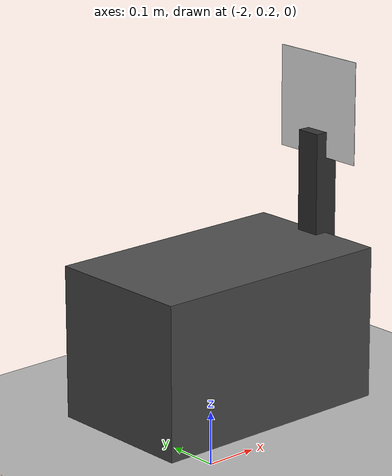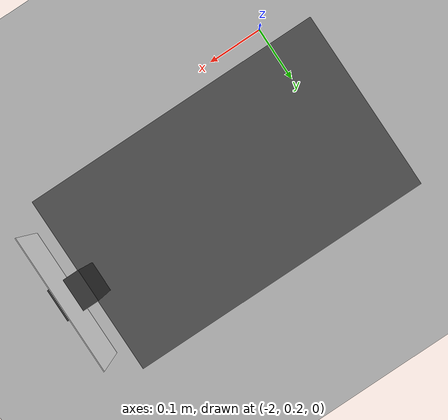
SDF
<?xml version="1.0" ?>
<sdf version="1.9">
  <world name="default">
    <physics name="default_physics" default="true" type="ode">
      <max_step_size>0.001</max_step_size>
      <real_time_factor>1</real_time_factor>
      <real_time_update_rate>1000</real_time_update_rate>
    </physics>

    <plugin filename="gz-sim-physics-system" name="gz::sim::systems::Physics"/>
    <!-- UserCommands provides the /world/default/create service used by ros_gz_sim -->
    <plugin filename="gz-sim-user-commands-system" name="gz::sim::systems::UserCommands"/>
    <plugin filename="gz-sim-scene-broadcaster-system" name="gz::sim::systems::SceneBroadcaster"/>
    <plugin filename="gz-sim-sensors-system" name="gz::sim::systems::Sensors">
      <render_engine>ogre2</render_engine>
    </plugin>

    <light type="directional" name="sun">
      <cast_shadows>true</cast_shadows>
      <pose>0 0 10 0 0 0</pose>
      <diffuse>0.8 0.8 0.8 1</diffuse>
      <specular>0.2 0.2 0.2 1</specular>
    </light>

    <model name="ground_plane">
      <static>true</static>
      <link name="link">
        <collision name="collision">
          <geometry>
            <plane>
              <normal>0 0 1</normal>
              <size>100 100</size>
            </plane>
          </geometry>
        </collision>
        <visual name="visual">
          <geometry>
            <plane>
              <normal>0 0 1</normal>
              <size>100 100</size>
            </plane>
          </geometry>
          <material>
            <ambient>0.7 0.7 0.7 1</ambient>
            <diffuse>0.7 0.7 0.7 1</diffuse>
            <specular>0.1 0.1 0.1 1</specular>
          </material>
        </visual>
      </link>
    </model>

    <!-- Simple charging dock model with AprilTag -->
    <model name="charging_dock">
      <static>true</static>
      <pose>-1.8 0.40 0 0 0 0</pose>

      <!-- Dock body -->
      <link name="body">
        <pose>0 0 0.15 0 0 0</pose>
        <visual name="base">
          <geometry>
            <box>
              <size>0.50 0.30 0.30</size>
            </box>
          </geometry>
          <material>
            <ambient>0.3 0.3 0.3 1</ambient>
            <diffuse>0.3 0.3 0.3 1</diffuse>
          </material>
        </visual>
        <collision name="base_collision">
          <geometry>
            <box>
              <size>0.50 0.30 0.30</size>
            </box>
          </geometry>
        </collision>
      </link>

      <!-- Post holding the tag -->
      <link name="post">
        <pose>0.25 0 0.30 0 0 0</pose>
        <visual name="post_visual">
          <geometry>
            <box>
              <size>0.05 0.05 0.40</size>
            </box>
          </geometry>
          <material>
            <ambient>0.2 0.2 0.2 1</ambient>
            <diffuse>0.2 0.2 0.2 1</diffuse>
          </material>
        </visual>
      </link>

      <!-- AprilTag visual on post, facing +X (towards robot spawn) -->
      <link name="tag">
        <pose>0.25 0 0.55 0 0 0</pose>
        <visual name="tag_visual">
          <geometry>
            <box>
              <size>0.001 0.20 0.20</size>
            </box>
          </geometry>
          <material>
            <ambient>1 1 1 1</ambient>
            <diffuse>1 1 1 1</diffuse>
            <specular>0 0 0 1</specular>
            <pbr>
              <metal>
                <albedo_map>model://nevo_bot/meshes/tag36h11_0.png</albedo_map>
              </metal>
            </pbr>
          </material>
        </visual>
      </link>

      <joint name="body_post_joint" type="fixed">
        <parent>body</parent>
        <child>post</child>
      </joint>
      <joint name="post_tag_joint" type="fixed">
        <parent>post</parent>
        <child>tag</child>
      </joint>
    </model>

    <scene>
      <ambient>0.4 0.4 0.4 1</ambient>
      <background>0.7 0.7 0.7 1</background>
      <shadows>true</shadows>
    </scene>
  </world>
</sdf>
